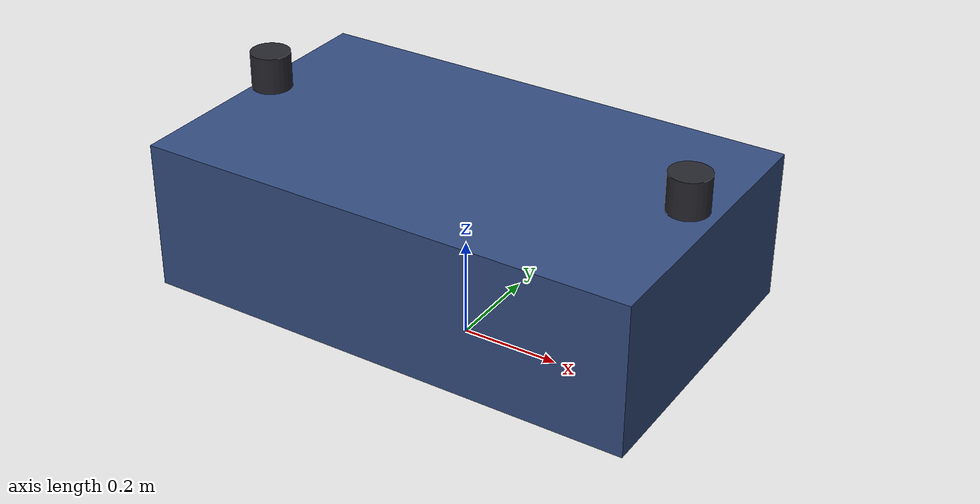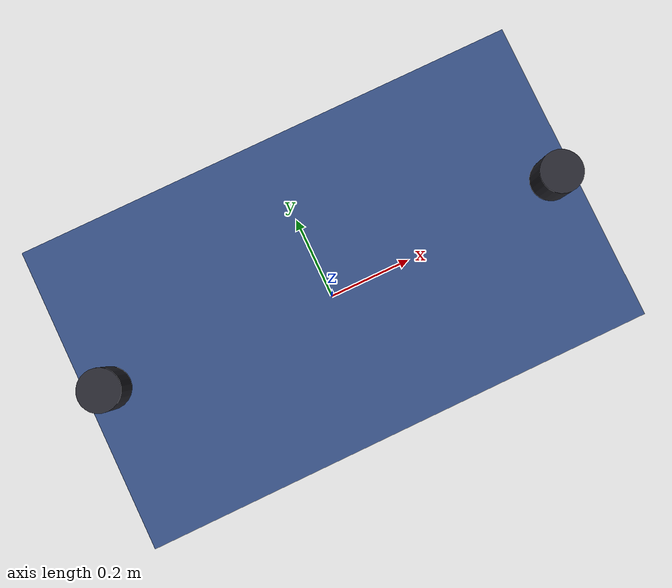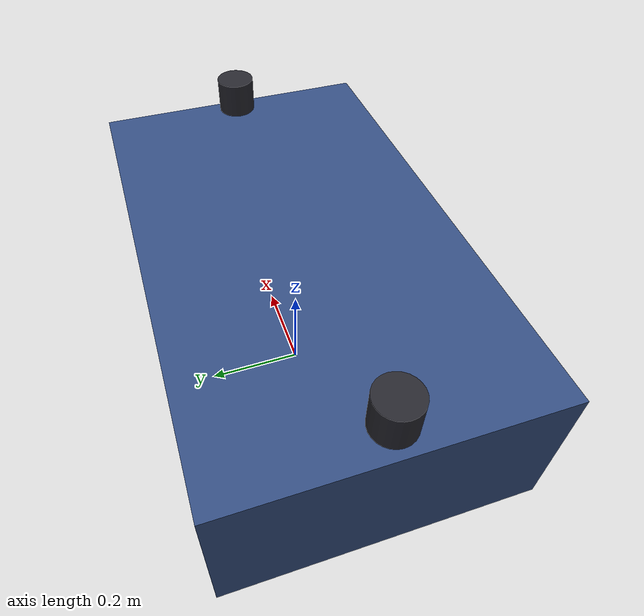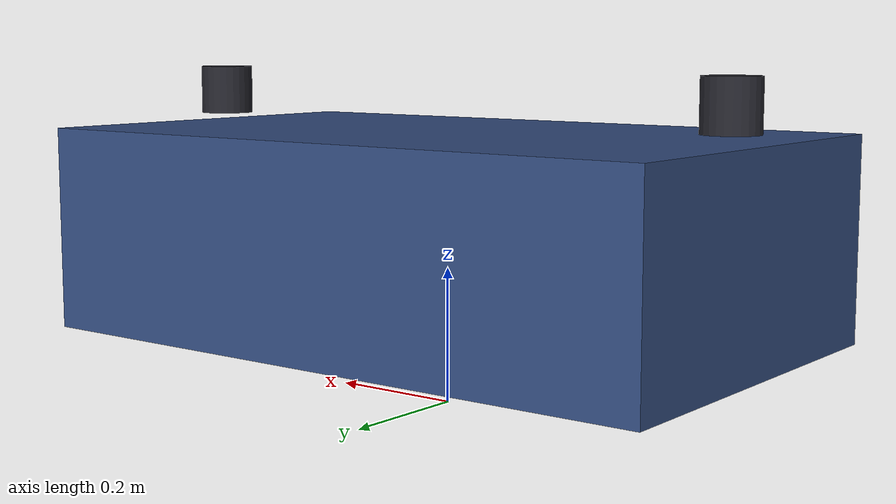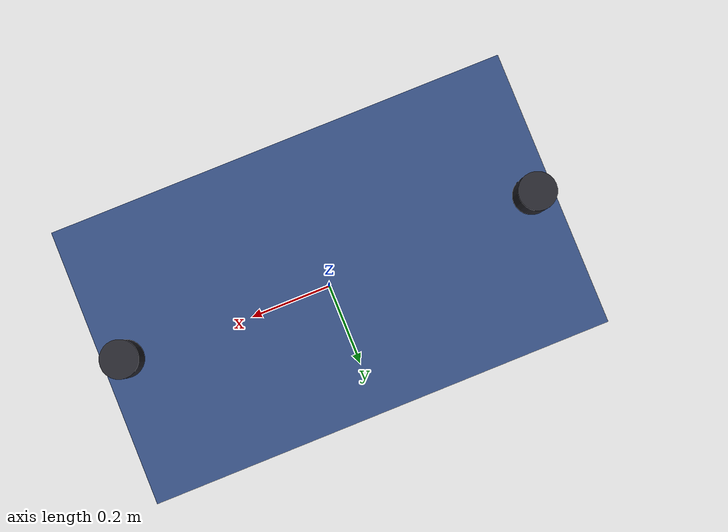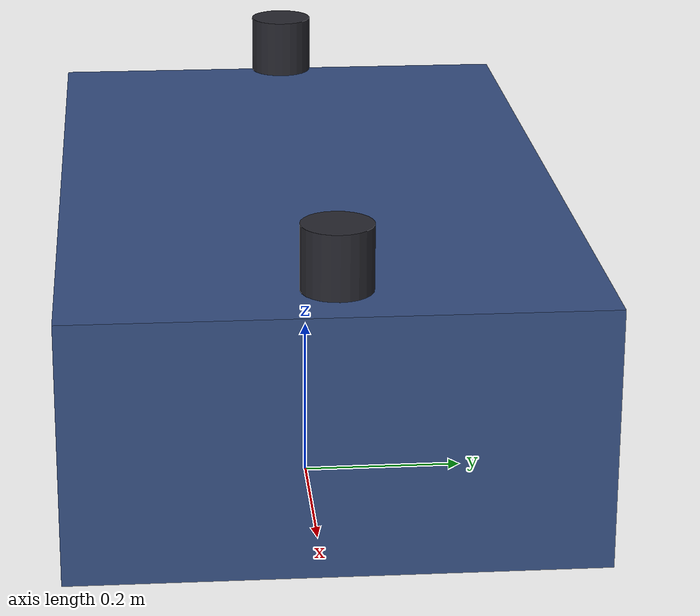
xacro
<?xml version="1.0"?>
<robot name="sensor_stack" xmlns:xacro="http://www.ros.org/wiki/xacro">

  <xacro:arg name="metadata_front" default="metadata/os1_64_rev7.json"/>
  <xacro:arg name="metadata_rear"  default="metadata/os0_128_rev7.json"/>
  <xacro:arg name="hardware_revision_front" default="rev07"/>
  <xacro:arg name="hardware_revision_rear"  default="rev07"/>
  <xacro:arg name="ray_mode"       default="raycast"/>
  <xacro:property name="ray_mode" value="$(arg ray_mode)"/>
  <xacro:property name="anchor_type"
    value="${'altimeter' if ray_mode == 'raycast' else 'camera'}"/>

  <xacro:include filename="ouster_macro.xacro"/>

  <xacro:property name="pi" value="3.14159265359"/>

  <!-- Platform body -->
  <link name="base_footprint"/>

  <link name="base_link">
    <inertial>
      <mass value="20.0"/>
      <origin xyz="0 0 0.15"/>
      <inertia ixx="0.6" ixy="0" ixz="0" iyy="1.0" iyz="0" izz="1.2"/>
    </inertial>
    <visual>
      <origin xyz="0 0 0.15"/>
      <geometry><box size="1.0 0.6 0.3"/></geometry>
      <material name="chassis"><color rgba="0.2 0.3 0.5 1"/></material>
    </visual>
    <collision>
      <origin xyz="0 0 0.15"/>
      <geometry><box size="1.0 0.6 0.3"/></geometry>
    </collision>
  </link>

  <joint name="base_joint" type="fixed">
    <parent link="base_footprint"/>
    <child link="base_link"/>
    <origin xyz="0 0 0.1"/>
  </joint>

  <!-- Front OS1-64 (primary, with IMU), looking forward -->
  <xacro:ouster_sensor
    name="front"
    parent="base_link"
    xyz="0.45 0 0.35" rpy="0 0 0"
    metadata_path="$(arg metadata_front)"
    hardware_revision="$(arg hardware_revision_front)"
    lidar_hz="10.0"
    enable_imu="true" imu_hz="100.0"
    ray_mode="${ray_mode}"
    anchor_type="${anchor_type}"/>

  <!-- Rear OS0-128 (short-range, no IMU), looking backward -->
  <xacro:ouster_sensor
    name="rear"
    parent="base_link"
    xyz="-0.45 0 0.35" rpy="0 0 ${pi}"
    metadata_path="$(arg metadata_rear)"
    hardware_revision="$(arg hardware_revision_rear)"
    lidar_hz="10.0"
    enable_imu="false"
    ray_mode="${ray_mode}"
    anchor_type="${anchor_type}"/>

</robot>

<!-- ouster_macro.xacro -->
<robot xmlns:xacro="http://www.ros.org/wiki/xacro">

  <xacro:include filename="ouster_smoke_obscurants.xacro"/>

  <xacro:macro name="ouster_sensor"
    params="name parent metadata_path
            hardware_revision:=rev07
            topic_prefix:=''
            xyz:='0 0 0' rpy:='0 0 0'
            lidar_hz:=10.0
            enable_imu:=false imu_hz:=100.0
            ray_mode:=raycast
            anchor_type:=altimeter
            obscurant_profile:=''">

    <xacro:property name="ns"
      value="${'/sensor/lidar/' + name if topic_prefix == '' else topic_prefix}"/>

    <link name="${name}/lidar_frame">
      <inertial>
        <mass value="0.33"/>
        <origin xyz="0 0 0"/>
        <inertia ixx="2.6e-4" ixy="0" ixz="0" iyy="2.6e-4" iyz="0" izz="2.6e-4"/>
      </inertial>
      <visual>
        <origin xyz="0 0 0"/>
        <geometry><cylinder radius="0.04" length="0.074"/></geometry>
        <material name="ouster_dark"><color rgba="0.15 0.15 0.18 1"/></material>
      </visual>
      <collision>
        <geometry><cylinder radius="0.04" length="0.074"/></geometry>
      </collision>
    </link>

    <joint name="${name}_mount_joint" type="fixed">
      <parent link="${parent}"/>
      <child link="${name}/lidar_frame"/>
      <origin xyz="${xyz}" rpy="${rpy}"/>
    </joint>

    <gazebo reference="${name}/lidar_frame">
      <sensor name="${name}" type="${anchor_type}">
        <pose>0 0 0 0 0 0</pose>
        <always_on>1</always_on>
        <update_rate>${lidar_hz}</update_rate>
        <visualize>false</visualize>
        <xacro:if value="${anchor_type == 'altimeter'}">
          <altimeter/>
        </xacro:if>
        <!-- Default: a tiny camera purely to start the render loop (its image
             is unused / not bridged). Not a lidar → no second scan. -->
        <xacro:if value="${anchor_type == 'camera'}">
          <topic>${ns}/render_anchor</topic>
          <camera>
            <horizontal_fov>1.0</horizontal_fov>
            <image><width>16</width><height>16</height></image>
            <clip><near>0.1</near><far>100.0</far></clip>
          </camera>
        </xacro:if>
        <xacro:if value="${anchor_type == 'gpu_lidar'}">
          <topic>${ns}/gz_native_scan</topic>
          <lidar>
            <scan>
              <horizontal><samples>512</samples><resolution>1</resolution>
                <min_angle>-3.14159</min_angle><max_angle>3.14159</max_angle></horizontal>
              <vertical><samples>64</samples><resolution>1</resolution>
                <min_angle>-0.2897</min_angle><max_angle>0.2897</max_angle></vertical>
            </scan>
            <range><min>0.5</min><max>120.0</max><resolution>0.001</resolution></range>
          </lidar>
        </xacro:if>
      </sensor>
    </gazebo>

    <!-- ── Optional IMU frame + real gz imu sensor ── -->
    <xacro:if value="${enable_imu}">
      <link name="${name}/imu_frame">
        <inertial>
          <mass value="0.01"/>
          <origin xyz="0 0 0"/>
          <inertia ixx="1e-6" ixy="0" ixz="0" iyy="1e-6" iyz="0" izz="1e-6"/>
        </inertial>
      </link>
      <joint name="${name}_imu_joint" type="fixed">
        <parent link="${name}/lidar_frame"/>
        <child link="${name}/imu_frame"/>
        <origin xyz="0 0 0" rpy="0 0 0"/>
      </joint>
      <gazebo reference="${name}/imu_frame">
        <sensor name="${name}_imu" type="imu">
          <pose>0 0 0 0 0 0</pose>
          <always_on>1</always_on>
          <update_rate>${imu_hz}</update_rate>
          <imu/>
        </sensor>
      </gazebo>
    </xacro:if>

    <!-- ── Model-level system plugin (one per sensor) ── -->
    <gazebo>
      <plugin filename="libgz_sensors_ouster.so"
              name="gz_gpu_ouster_lidar::GzGpuOusterLidarSystem">
        <metadata_path>${metadata_path}</metadata_path>
        <!-- auto | gen1 | revC | revD | rev05 | rev06 | rev06.2 |
             rev07 | rev07.1 | rev08. Explicit is preferred when metadata
             carries a synthetic or pre-standard product part number. -->
        <hardware_revision>${hardware_revision}</hardware_revision>
        <sensor_name>${ns}</sensor_name>
        <lidar_hz>${lidar_hz}</lidar_hz>
        <!-- panels (GPU render rig) | raycast (CPU per-beam, no rendering). -->
        <ray_mode>${ray_mode}</ray_mode>
        <xacro:if value="${obscurant_profile == 'smoke_demo'}">
          <xacro:ouster_smoke_obscurants/>
        </xacro:if>
        <xacro:if value="${enable_imu}">
          <imu_name>auto</imu_name>
          <imu_hz>${imu_hz}</imu_hz>
        </xacro:if>
      </plugin>
    </gazebo>

  </xacro:macro>
</robot>
